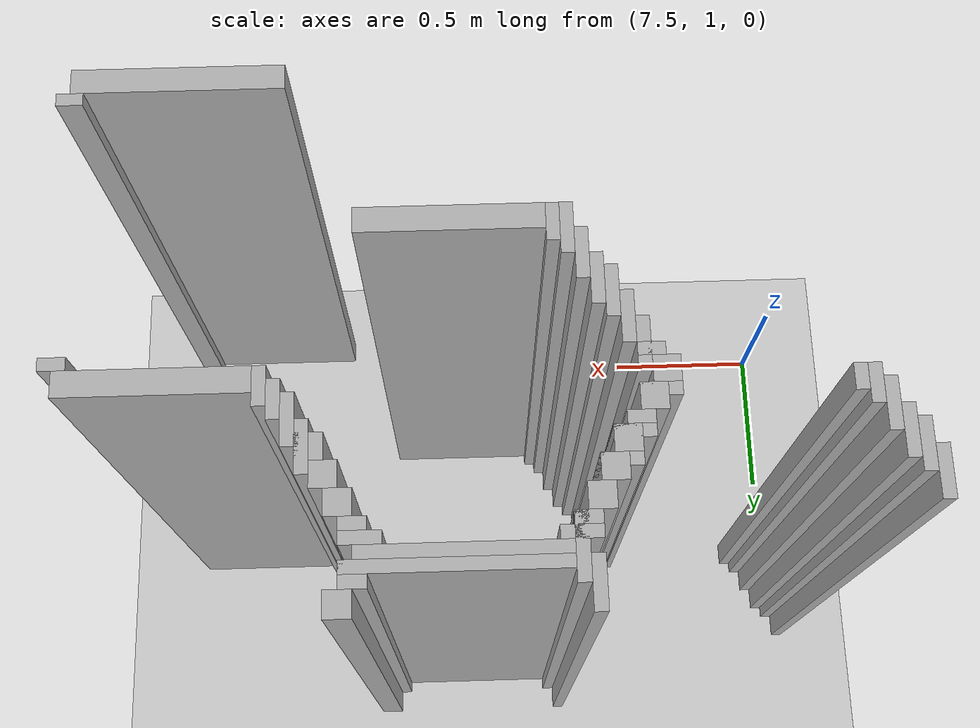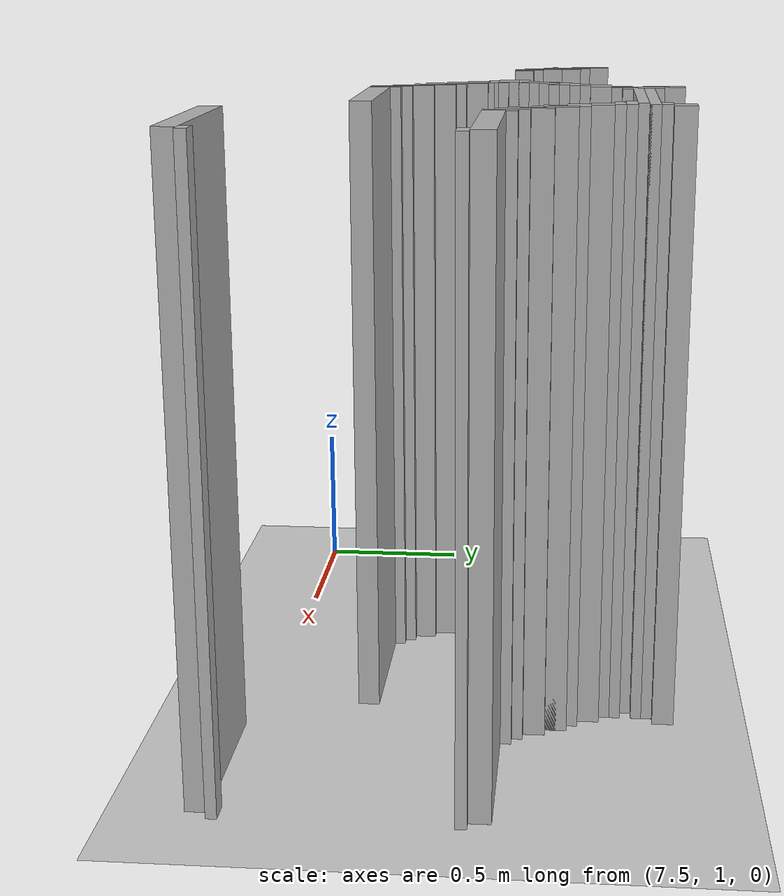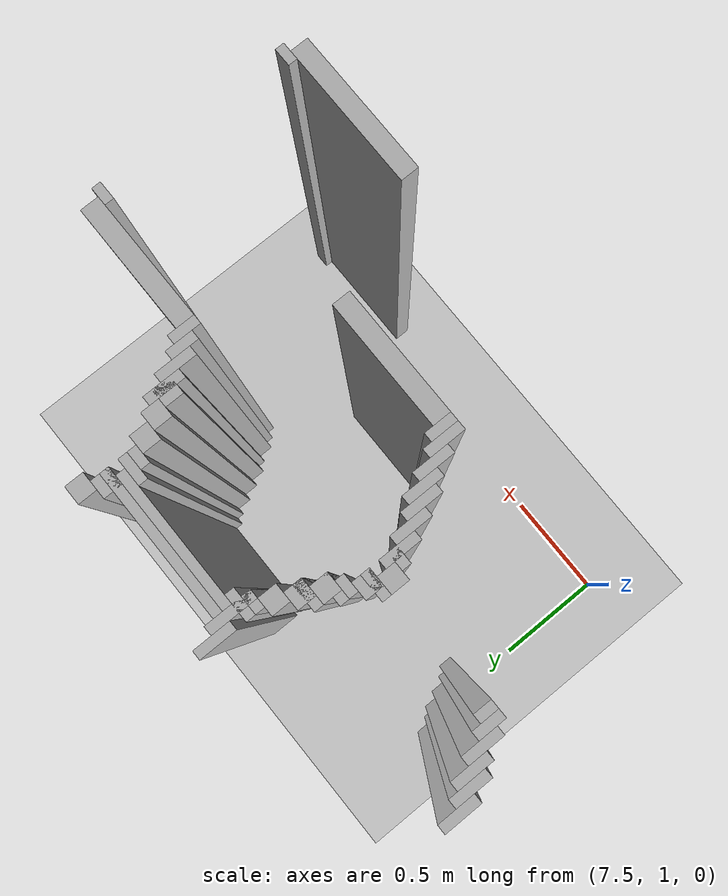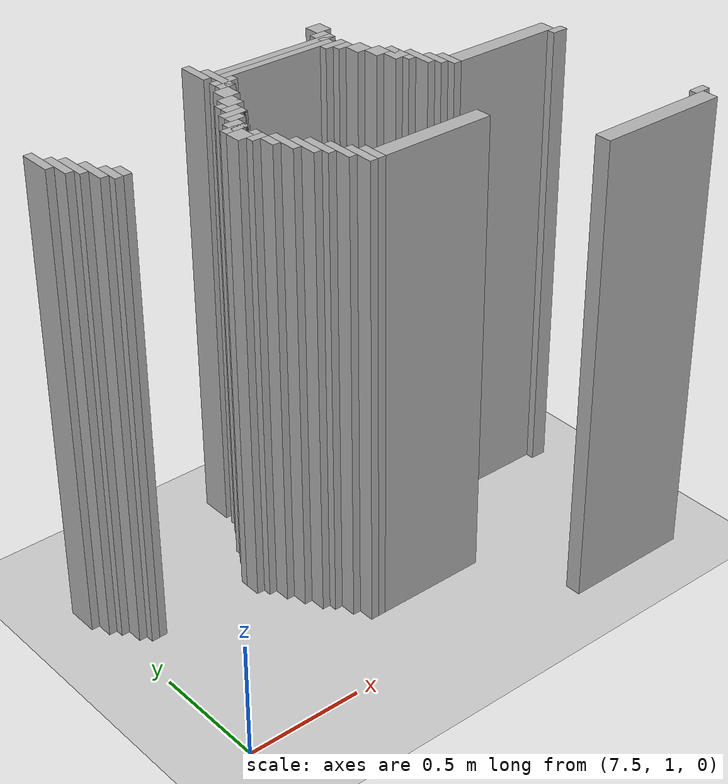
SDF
<sdf version="1.6">
 <world name="slam_world">
  <model name="ground_plane">
   <static>true</static>
   <link name="link">
    <collision name="collision">
     <geometry><plane><normal>0 0 1</normal><size>100 100</size></plane></geometry>
    </collision>
    <visual name="visual">
     <geometry><plane><normal>0 0 1</normal><size>100 100</size></plane></geometry>
     <material>
      <ambient>0.8 0.8 0.8 1</ambient>
      <diffuse>0.8 0.8 0.8 1</diffuse>
      <specular>0.8 0.8 0.8 1</specular>
     </material>
    </visual>
   </link>
  </model>
  <model name="wall_5005">
   <static>true</static>
   <pose>8.30046403712297 2.262180974477958 1.0 0 0 0</pose>
   <link name="link">
    <collision name="collision">
     <geometry><box><size>0.03480278422273782 0.13921113689095127 2.0</size></box></geometry>
    </collision>
    <visual name="visual">
     <geometry><box><size>0.03480278422273782 0.13921113689095127 2.0</size></box></geometry>
     <material><ambient>0.5 0.5 0.5 1</ambient><diffuse>0.7 0.7 0.7 1</diffuse></material>
    </visual>
   </link>
  </model>
  <model name="wall_5006">
   <static>true</static>
   <pose>8.909512761020881 2.296983758700696 1.0 0 0 0</pose>
   <link name="link">
    <collision name="collision">
     <geometry><box><size>0.06960556844547564 0.06960556844547564 2.0</size></box></geometry>
    </collision>
    <visual name="visual">
     <geometry><box><size>0.06960556844547564 0.06960556844547564 2.0</size></box></geometry>
     <material><ambient>0.5 0.5 0.5 1</ambient><diffuse>0.7 0.7 0.7 1</diffuse></material>
    </visual>
   </link>
  </model>
  <model name="wall_5022">
   <static>true</static>
   <pose>8.335266821345707 2.1751740139211138 1.0 0 0 0</pose>
   <link name="link">
    <collision name="collision">
     <geometry><box><size>0.03480278422273782 0.17401392111368907 2.0</size></box></geometry>
    </collision>
    <visual name="visual">
     <geometry><box><size>0.03480278422273782 0.17401392111368907 2.0</size></box></geometry>
     <material><ambient>0.5 0.5 0.5 1</ambient><diffuse>0.7 0.7 0.7 1</diffuse></material>
    </visual>
   </link>
  </model>
  <model name="wall_5023">
   <static>true</static>
   <pose>8.874709976798144 2.2273781902552203 1.0 0 0 0</pose>
   <link name="link">
    <collision name="collision">
     <geometry><box><size>0.06960556844547564 0.06960556844547564 2.0</size></box></geometry>
    </collision>
    <visual name="visual">
     <geometry><box><size>0.06960556844547564 0.06960556844547564 2.0</size></box></geometry>
     <material><ambient>0.5 0.5 0.5 1</ambient><diffuse>0.7 0.7 0.7 1</diffuse></material>
    </visual>
   </link>
  </model>
  <model name="wall_5039">
   <static>true</static>
   <pose>8.631090487238978 2.2099767981438516 1.0 0 0 0</pose>
   <link name="link">
    <collision name="collision">
     <geometry><box><size>0.5568445475638051 0.03480278422273782 2.0</size></box></geometry>
    </collision>
    <visual name="visual">
     <geometry><box><size>0.5568445475638051 0.03480278422273782 2.0</size></box></geometry>
     <material><ambient>0.5 0.5 0.5 1</ambient><diffuse>0.7 0.7 0.7 1</diffuse></material>
    </visual>
   </link>
  </model>
  <model name="wall_5051">
   <static>true</static>
   <pose>8.61368909512761 2.1751740139211138 1.0 0 0 0</pose>
   <link name="link">
    <collision name="collision">
     <geometry><box><size>0.5220417633410672 0.03480278422273782 2.0</size></box></geometry>
    </collision>
    <visual name="visual">
     <geometry><box><size>0.5220417633410672 0.03480278422273782 2.0</size></box></geometry>
     <material><ambient>0.5 0.5 0.5 1</ambient><diffuse>0.7 0.7 0.7 1</diffuse></material>
    </visual>
   </link>
  </model>
  <model name="wall_5065">
   <static>true</static>
   <pose>8.335266821345707 2.140371229698376 1.0 0 0 0</pose>
   <link name="link">
    <collision name="collision">
     <geometry><box><size>0.10440835266821345 0.03480278422273782 2.0</size></box></geometry>
    </collision>
    <visual name="visual">
     <geometry><box><size>0.10440835266821345 0.03480278422273782 2.0</size></box></geometry>
     <material><ambient>0.5 0.5 0.5 1</ambient><diffuse>0.7 0.7 0.7 1</diffuse></material>
    </visual>
   </link>
  </model>
  <model name="wall_5066">
   <static>true</static>
   <pose>8.857308584686775 2.140371229698376 1.0 0 0 0</pose>
   <link name="link">
    <collision name="collision">
     <geometry><box><size>0.10440835266821345 0.03480278422273782 2.0</size></box></geometry>
    </collision>
    <visual name="visual">
     <geometry><box><size>0.10440835266821345 0.03480278422273782 2.0</size></box></geometry>
     <material><ambient>0.5 0.5 0.5 1</ambient><diffuse>0.7 0.7 0.7 1</diffuse></material>
    </visual>
   </link>
  </model>
  <model name="wall_5081">
   <static>true</static>
   <pose>8.317865429234338 2.105568445475638 1.0 0 0 0</pose>
   <link name="link">
    <collision name="collision">
     <geometry><box><size>0.06960556844547564 0.03480278422273782 2.0</size></box></geometry>
    </collision>
    <visual name="visual">
     <geometry><box><size>0.06960556844547564 0.03480278422273782 2.0</size></box></geometry>
     <material><ambient>0.5 0.5 0.5 1</ambient><diffuse>0.7 0.7 0.7 1</diffuse></material>
    </visual>
   </link>
  </model>
  <model name="wall_5082">
   <static>true</static>
   <pose>8.874709976798144 2.105568445475638 1.0 0 0 0</pose>
   <link name="link">
    <collision name="collision">
     <geometry><box><size>0.06960556844547564 0.03480278422273782 2.0</size></box></geometry>
    </collision>
    <visual name="visual">
     <geometry><box><size>0.06960556844547564 0.03480278422273782 2.0</size></box></geometry>
     <material><ambient>0.5 0.5 0.5 1</ambient><diffuse>0.7 0.7 0.7 1</diffuse></material>
    </visual>
   </link>
  </model>
  <model name="wall_5094">
   <static>true</static>
   <pose>7.465197215777262 2.0185614849187936 1.0 0 0 0</pose>
   <link name="link">
    <collision name="collision">
     <geometry><box><size>0.03480278422273782 0.13921113689095127 2.0</size></box></geometry>
    </collision>
    <visual name="visual">
     <geometry><box><size>0.03480278422273782 0.13921113689095127 2.0</size></box></geometry>
     <material><ambient>0.5 0.5 0.5 1</ambient><diffuse>0.7 0.7 0.7 1</diffuse></material>
    </visual>
   </link>
  </model>
  <model name="wall_5095">
   <static>true</static>
   <pose>8.2830626450116 2.053364269141531 1.0 0 0 0</pose>
   <link name="link">
    <collision name="collision">
     <geometry><box><size>0.06960556844547564 0.06960556844547564 2.0</size></box></geometry>
    </collision>
    <visual name="visual">
     <geometry><box><size>0.06960556844547564 0.06960556844547564 2.0</size></box></geometry>
     <material><ambient>0.5 0.5 0.5 1</ambient><diffuse>0.7 0.7 0.7 1</diffuse></material>
    </visual>
   </link>
  </model>
  <model name="wall_5096">
   <static>true</static>
   <pose>8.909512761020881 2.053364269141531 1.0 0 0 0</pose>
   <link name="link">
    <collision name="collision">
     <geometry><box><size>0.06960556844547564 0.06960556844547564 2.0</size></box></geometry>
    </collision>
    <visual name="visual">
     <geometry><box><size>0.06960556844547564 0.06960556844547564 2.0</size></box></geometry>
     <material><ambient>0.5 0.5 0.5 1</ambient><diffuse>0.7 0.7 0.7 1</diffuse></material>
    </visual>
   </link>
  </model>
  <model name="wall_5108">
   <static>true</static>
   <pose>7.5 1.948955916473318 1.0 0 0 0</pose>
   <link name="link">
    <collision name="collision">
     <geometry><box><size>0.03480278422273782 0.13921113689095127 2.0</size></box></geometry>
    </collision>
    <visual name="visual">
     <geometry><box><size>0.03480278422273782 0.13921113689095127 2.0</size></box></geometry>
     <material><ambient>0.5 0.5 0.5 1</ambient><diffuse>0.7 0.7 0.7 1</diffuse></material>
    </visual>
   </link>
  </model>
  <model name="wall_5109">
   <static>true</static>
   <pose>8.248259860788863 1.9837587006960555 1.0 0 0 0</pose>
   <link name="link">
    <collision name="collision">
     <geometry><box><size>0.06960556844547564 0.06960556844547564 2.0</size></box></geometry>
    </collision>
    <visual name="visual">
     <geometry><box><size>0.06960556844547564 0.06960556844547564 2.0</size></box></geometry>
     <material><ambient>0.5 0.5 0.5 1</ambient><diffuse>0.7 0.7 0.7 1</diffuse></material>
    </visual>
   </link>
  </model>
  <model name="wall_5110">
   <static>true</static>
   <pose>8.944315545243619 1.9837587006960555 1.0 0 0 0</pose>
   <link name="link">
    <collision name="collision">
     <geometry><box><size>0.06960556844547564 0.06960556844547564 2.0</size></box></geometry>
    </collision>
    <visual name="visual">
     <geometry><box><size>0.06960556844547564 0.06960556844547564 2.0</size></box></geometry>
     <material><ambient>0.5 0.5 0.5 1</ambient><diffuse>0.7 0.7 0.7 1</diffuse></material>
    </visual>
   </link>
  </model>
  <model name="wall_5122">
   <static>true</static>
   <pose>7.534802784222737 1.91415313225058 1.0 0 0 0</pose>
   <link name="link">
    <collision name="collision">
     <geometry><box><size>0.03480278422273782 0.13921113689095127 2.0</size></box></geometry>
    </collision>
    <visual name="visual">
     <geometry><box><size>0.03480278422273782 0.13921113689095127 2.0</size></box></geometry>
     <material><ambient>0.5 0.5 0.5 1</ambient><diffuse>0.7 0.7 0.7 1</diffuse></material>
    </visual>
   </link>
  </model>
  <model name="wall_5123">
   <static>true</static>
   <pose>8.230858468677495 1.9663573085846866 1.0 0 0 0</pose>
   <link name="link">
    <collision name="collision">
     <geometry><box><size>0.10440835266821345 0.03480278422273782 2.0</size></box></geometry>
    </collision>
    <visual name="visual">
     <geometry><box><size>0.10440835266821345 0.03480278422273782 2.0</size></box></geometry>
     <material><ambient>0.5 0.5 0.5 1</ambient><diffuse>0.7 0.7 0.7 1</diffuse></material>
    </visual>
   </link>
  </model>
  <model name="wall_5124">
   <static>true</static>
   <pose>8.996519721577727 1.91415313225058 1.0 0 0 0</pose>
   <link name="link">
    <collision name="collision">
     <geometry><box><size>0.03480278422273782 0.13921113689095127 2.0</size></box></geometry>
    </collision>
    <visual name="visual">
     <geometry><box><size>0.03480278422273782 0.13921113689095127 2.0</size></box></geometry>
     <material><ambient>0.5 0.5 0.5 1</ambient><diffuse>0.7 0.7 0.7 1</diffuse></material>
    </visual>
   </link>
  </model>
  <model name="wall_5133">
   <static>true</static>
   <pose>8.213457076566124 1.91415313225058 1.0 0 0 0</pose>
   <link name="link">
    <collision name="collision">
     <geometry><box><size>0.06960556844547564 0.06960556844547564 2.0</size></box></geometry>
    </collision>
    <visual name="visual">
     <geometry><box><size>0.06960556844547564 0.06960556844547564 2.0</size></box></geometry>
     <material><ambient>0.5 0.5 0.5 1</ambient><diffuse>0.7 0.7 0.7 1</diffuse></material>
    </visual>
   </link>
  </model>
  <model name="wall_5134">
   <static>true</static>
   <pose>8.979118329466356 1.91415313225058 1.0 0 0 0</pose>
   <link name="link">
    <collision name="collision">
     <geometry><box><size>0.06960556844547564 0.06960556844547564 2.0</size></box></geometry>
    </collision>
    <visual name="visual">
     <geometry><box><size>0.06960556844547564 0.06960556844547564 2.0</size></box></geometry>
     <material><ambient>0.5 0.5 0.5 1</ambient><diffuse>0.7 0.7 0.7 1</diffuse></material>
    </visual>
   </link>
  </model>
  <model name="wall_5144">
   <static>true</static>
   <pose>7.569605568445476 1.8445475638051043 1.0 0 0 0</pose>
   <link name="link">
    <collision name="collision">
     <geometry><box><size>0.03480278422273782 0.13921113689095127 2.0</size></box></geometry>
    </collision>
    <visual name="visual">
     <geometry><box><size>0.03480278422273782 0.13921113689095127 2.0</size></box></geometry>
     <material><ambient>0.5 0.5 0.5 1</ambient><diffuse>0.7 0.7 0.7 1</diffuse></material>
    </visual>
   </link>
  </model>
  <model name="wall_5145">
   <static>true</static>
   <pose>8.196055684454755 1.896751740139211 1.0 0 0 0</pose>
   <link name="link">
    <collision name="collision">
     <geometry><box><size>0.10440835266821345 0.03480278422273782 2.0</size></box></geometry>
    </collision>
    <visual name="visual">
     <geometry><box><size>0.10440835266821345 0.03480278422273782 2.0</size></box></geometry>
     <material><ambient>0.5 0.5 0.5 1</ambient><diffuse>0.7 0.7 0.7 1</diffuse></material>
    </visual>
   </link>
  </model>
  <model name="wall_5146">
   <static>true</static>
   <pose>9.031322505800464 1.8445475638051043 1.0 0 0 0</pose>
   <link name="link">
    <collision name="collision">
     <geometry><box><size>0.03480278422273782 0.13921113689095127 2.0</size></box></geometry>
    </collision>
    <visual name="visual">
     <geometry><box><size>0.03480278422273782 0.13921113689095127 2.0</size></box></geometry>
     <material><ambient>0.5 0.5 0.5 1</ambient><diffuse>0.7 0.7 0.7 1</diffuse></material>
    </visual>
   </link>
  </model>
  <model name="wall_5155">
   <static>true</static>
   <pose>8.178654292343387 1.8619489559164732 1.0 0 0 0</pose>
   <link name="link">
    <collision name="collision">
     <geometry><box><size>0.06960556844547564 0.03480278422273782 2.0</size></box></geometry>
    </collision>
    <visual name="visual">
     <geometry><box><size>0.06960556844547564 0.03480278422273782 2.0</size></box></geometry>
     <material><ambient>0.5 0.5 0.5 1</ambient><diffuse>0.7 0.7 0.7 1</diffuse></material>
    </visual>
   </link>
  </model>
  <model name="wall_5163">
   <static>true</static>
   <pose>7.604408352668213 1.7923433874709975 1.0 0 0 0</pose>
   <link name="link">
    <collision name="collision">
     <geometry><box><size>0.03480278422273782 0.10440835266821345 2.0</size></box></geometry>
    </collision>
    <visual name="visual">
     <geometry><box><size>0.03480278422273782 0.10440835266821345 2.0</size></box></geometry>
     <material><ambient>0.5 0.5 0.5 1</ambient><diffuse>0.7 0.7 0.7 1</diffuse></material>
    </visual>
   </link>
  </model>
  <model name="wall_5164">
   <static>true</static>
   <pose>8.14385150812065 1.8097447795823665 1.0 0 0 0</pose>
   <link name="link">
    <collision name="collision">
     <geometry><box><size>0.06960556844547564 0.06960556844547564 2.0</size></box></geometry>
    </collision>
    <visual name="visual">
     <geometry><box><size>0.06960556844547564 0.06960556844547564 2.0</size></box></geometry>
     <material><ambient>0.5 0.5 0.5 1</ambient><diffuse>0.7 0.7 0.7 1</diffuse></material>
    </visual>
   </link>
  </model>
  <model name="wall_5165">
   <static>true</static>
   <pose>9.066125290023201 1.7923433874709975 1.0 0 0 0</pose>
   <link name="link">
    <collision name="collision">
     <geometry><box><size>0.03480278422273782 0.10440835266821345 2.0</size></box></geometry>
    </collision>
    <visual name="visual">
     <geometry><box><size>0.03480278422273782 0.10440835266821345 2.0</size></box></geometry>
     <material><ambient>0.5 0.5 0.5 1</ambient><diffuse>0.7 0.7 0.7 1</diffuse></material>
    </visual>
   </link>
  </model>
  <model name="wall_5177">
   <static>true</static>
   <pose>7.6392111368909505 1.7749419953596286 1.0 0 0 0</pose>
   <link name="link">
    <collision name="collision">
     <geometry><box><size>0.03480278422273782 0.06960556844547564 2.0</size></box></geometry>
    </collision>
    <visual name="visual">
     <geometry><box><size>0.03480278422273782 0.06960556844547564 2.0</size></box></geometry>
     <material><ambient>0.5 0.5 0.5 1</ambient><diffuse>0.7 0.7 0.7 1</diffuse></material>
    </visual>
   </link>
  </model>
  <model name="wall_5178">
   <static>true</static>
   <pose>8.12645011600928 1.7923433874709975 1.0 0 0 0</pose>
   <link name="link">
    <collision name="collision">
     <geometry><box><size>0.10440835266821345 0.03480278422273782 2.0</size></box></geometry>
    </collision>
    <visual name="visual">
     <geometry><box><size>0.10440835266821345 0.03480278422273782 2.0</size></box></geometry>
     <material><ambient>0.5 0.5 0.5 1</ambient><diffuse>0.7 0.7 0.7 1</diffuse></material>
    </visual>
   </link>
  </model>
  <model name="wall_5179">
   <static>true</static>
   <pose>9.100928074245939 1.75754060324826 1.0 0 0 0</pose>
   <link name="link">
    <collision name="collision">
     <geometry><box><size>0.03480278422273782 0.10440835266821345 2.0</size></box></geometry>
    </collision>
    <visual name="visual">
     <geometry><box><size>0.03480278422273782 0.10440835266821345 2.0</size></box></geometry>
     <material><ambient>0.5 0.5 0.5 1</ambient><diffuse>0.7 0.7 0.7 1</diffuse></material>
    </visual>
   </link>
  </model>
  <model name="wall_5189">
   <static>true</static>
   <pose>8.109048723897912 1.740139211136891 1.0 0 0 0</pose>
   <link name="link">
    <collision name="collision">
     <geometry><box><size>0.06960556844547564 0.06960556844547564 2.0</size></box></geometry>
    </collision>
    <visual name="visual">
     <geometry><box><size>0.06960556844547564 0.06960556844547564 2.0</size></box></geometry>
     <material><ambient>0.5 0.5 0.5 1</ambient><diffuse>0.7 0.7 0.7 1</diffuse></material>
    </visual>
   </link>
  </model>
  <model name="wall_5190">
   <static>true</static>
   <pose>9.361948955916473 1.740139211136891 1.0 0 0 0</pose>
   <link name="link">
    <collision name="collision">
     <geometry><box><size>0.4872389791183295 0.06960556844547564 2.0</size></box></geometry>
    </collision>
    <visual name="visual">
     <geometry><box><size>0.4872389791183295 0.06960556844547564 2.0</size></box></geometry>
     <material><ambient>0.5 0.5 0.5 1</ambient><diffuse>0.7 0.7 0.7 1</diffuse></material>
    </visual>
   </link>
  </model>
  <model name="wall_5199">
   <static>true</static>
   <pose>8.161252900232018 1.6705336426914152 1.0 0 0 0</pose>
   <link name="link">
    <collision name="collision">
     <geometry><box><size>0.03480278422273782 0.13921113689095127 2.0</size></box></geometry>
    </collision>
    <visual name="visual">
     <geometry><box><size>0.03480278422273782 0.13921113689095127 2.0</size></box></geometry>
     <material><ambient>0.5 0.5 0.5 1</ambient><diffuse>0.7 0.7 0.7 1</diffuse></material>
    </visual>
   </link>
  </model>
  <model name="wall_5214">
   <static>true</static>
   <pose>8.14385150812065 1.6879350348027842 1.0 0 0 0</pose>
   <link name="link">
    <collision name="collision">
     <geometry><box><size>0.06960556844547564 0.03480278422273782 2.0</size></box></geometry>
    </collision>
    <visual name="visual">
     <geometry><box><size>0.06960556844547564 0.03480278422273782 2.0</size></box></geometry>
     <material><ambient>0.5 0.5 0.5 1</ambient><diffuse>0.7 0.7 0.7 1</diffuse></material>
    </visual>
   </link>
  </model>
  <model name="wall_5215">
   <static>true</static>
   <pose>9.605568445475638 1.6879350348027842 1.0 0 0 0</pose>
   <link name="link">
    <collision name="collision">
     <geometry><box><size>0.06960556844547564 0.03480278422273782 2.0</size></box></geometry>
    </collision>
    <visual name="visual">
     <geometry><box><size>0.06960556844547564 0.03480278422273782 2.0</size></box></geometry>
     <material><ambient>0.5 0.5 0.5 1</ambient><diffuse>0.7 0.7 0.7 1</diffuse></material>
    </visual>
   </link>
  </model>
  <model name="wall_5229">
   <static>true</static>
   <pose>8.196055684454755 1.6009280742459395 1.0 0 0 0</pose>
   <link name="link">
    <collision name="collision">
     <geometry><box><size>0.03480278422273782 0.13921113689095127 2.0</size></box></geometry>
    </collision>
    <visual name="visual">
     <geometry><box><size>0.03480278422273782 0.13921113689095127 2.0</size></box></geometry>
     <material><ambient>0.5 0.5 0.5 1</ambient><diffuse>0.7 0.7 0.7 1</diffuse></material>
    </visual>
   </link>
  </model>
  <model name="wall_5244">
   <static>true</static>
   <pose>8.230858468677495 1.531322505800464 1.0 0 0 0</pose>
   <link name="link">
    <collision name="collision">
     <geometry><box><size>0.03480278422273782 0.13921113689095127 2.0</size></box></geometry>
    </collision>
    <visual name="visual">
     <geometry><box><size>0.03480278422273782 0.13921113689095127 2.0</size></box></geometry>
     <material><ambient>0.5 0.5 0.5 1</ambient><diffuse>0.7 0.7 0.7 1</diffuse></material>
    </visual>
   </link>
  </model>
  <model name="wall_5259">
   <static>true</static>
   <pose>8.265661252900232 1.4965197215777262 1.0 0 0 0</pose>
   <link name="link">
    <collision name="collision">
     <geometry><box><size>0.03480278422273782 0.13921113689095127 2.0</size></box></geometry>
    </collision>
    <visual name="visual">
     <geometry><box><size>0.03480278422273782 0.13921113689095127 2.0</size></box></geometry>
     <material><ambient>0.5 0.5 0.5 1</ambient><diffuse>0.7 0.7 0.7 1</diffuse></material>
    </visual>
   </link>
  </model>
  <model name="wall_5285">
   <static>true</static>
   <pose>8.30046403712297 1.4269141531322505 1.0 0 0 0</pose>
   <link name="link">
    <collision name="collision">
     <geometry><box><size>0.03480278422273782 0.13921113689095127 2.0</size></box></geometry>
    </collision>
    <visual name="visual">
     <geometry><box><size>0.03480278422273782 0.13921113689095127 2.0</size></box></geometry>
     <material><ambient>0.5 0.5 0.5 1</ambient><diffuse>0.7 0.7 0.7 1</diffuse></material>
    </visual>
   </link>
  </model>
  <model name="wall_5307">
   <static>true</static>
   <pose>8.335266821345707 1.357308584686775 1.0 0 0 0</pose>
   <link name="link">
    <collision name="collision">
     <geometry><box><size>0.03480278422273782 0.13921113689095127 2.0</size></box></geometry>
    </collision>
    <visual name="visual">
     <geometry><box><size>0.03480278422273782 0.13921113689095127 2.0</size></box></geometry>
     <material><ambient>0.5 0.5 0.5 1</ambient><diffuse>0.7 0.7 0.7 1</diffuse></material>
    </visual>
   </link>
  </model>
  <model name="wall_5317">
   <static>true</static>
   <pose>8.370069605568444 1.339907192575406 1.0 0 0 0</pose>
   <link name="link">
    <collision name="collision">
     <geometry><box><size>0.03480278422273782 0.10440835266821345 2.0</size></box></geometry>
    </collision>
    <visual name="visual">
     <geometry><box><size>0.03480278422273782 0.10440835266821345 2.0</size></box></geometry>
     <material><ambient>0.5 0.5 0.5 1</ambient><diffuse>0.7 0.7 0.7 1</diffuse></material>
    </visual>
   </link>
  </model>
  <model name="wall_5332">
   <static>true</static>
   <pose>8.631090487238978 1.322505800464037 1.0 0 0 0</pose>
   <link name="link">
    <collision name="collision">
     <geometry><box><size>0.4872389791183295 0.06960556844547564 2.0</size></box></geometry>
    </collision>
    <visual name="visual">
     <geometry><box><size>0.4872389791183295 0.06960556844547564 2.0</size></box></geometry>
     <material><ambient>0.5 0.5 0.5 1</ambient><diffuse>0.7 0.7 0.7 1</diffuse></material>
    </visual>
   </link>
  </model>
  <model name="wall_5426">
   <static>true</static>
   <pose>9.605568445475638 0.95707656612529 1.0 0 0 0</pose>
   <link name="link">
    <collision name="collision">
     <geometry><box><size>0.06960556844547564 0.03480278422273782 2.0</size></box></geometry>
    </collision>
    <visual name="visual">
     <geometry><box><size>0.06960556844547564 0.03480278422273782 2.0</size></box></geometry>
     <material><ambient>0.5 0.5 0.5 1</ambient><diffuse>0.7 0.7 0.7 1</diffuse></material>
    </visual>
   </link>
  </model>
  <model name="wall_5438">
   <static>true</static>
   <pose>9.327146171693736 0.9048723897911832 1.0 0 0 0</pose>
   <link name="link">
    <collision name="collision">
     <geometry><box><size>0.5568445475638051 0.06960556844547564 2.0</size></box></geometry>
    </collision>
    <visual name="visual">
     <geometry><box><size>0.5568445475638051 0.06960556844547564 2.0</size></box></geometry>
     <material><ambient>0.5 0.5 0.5 1</ambient><diffuse>0.7 0.7 0.7 1</diffuse></material>
    </visual>
   </link>
  </model>
 </world>
</sdf>
